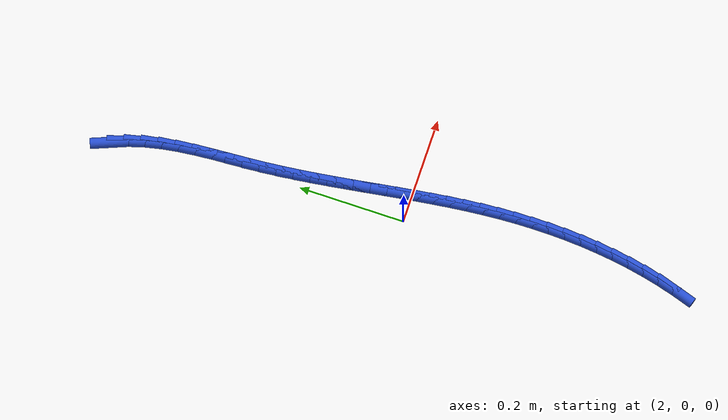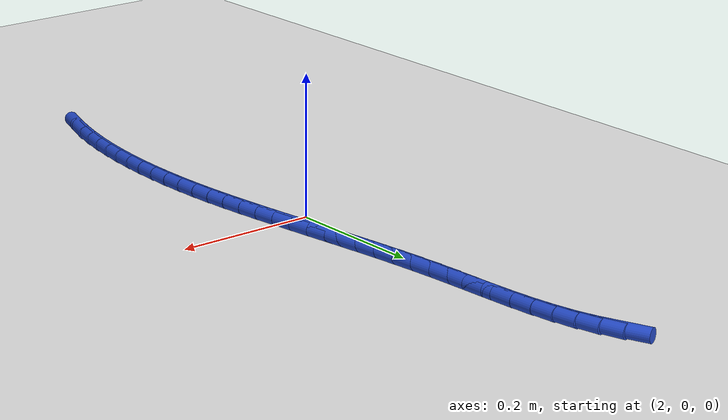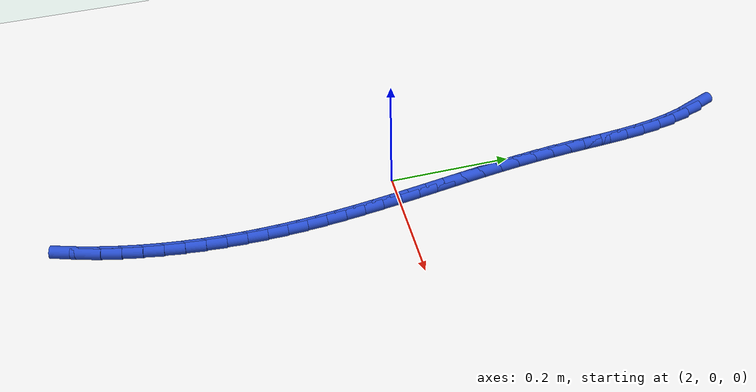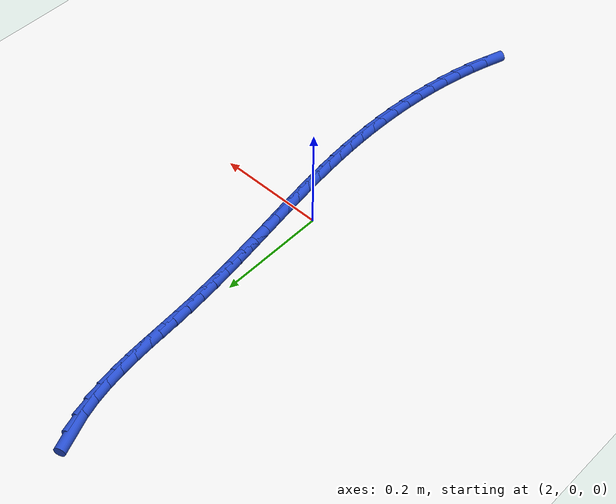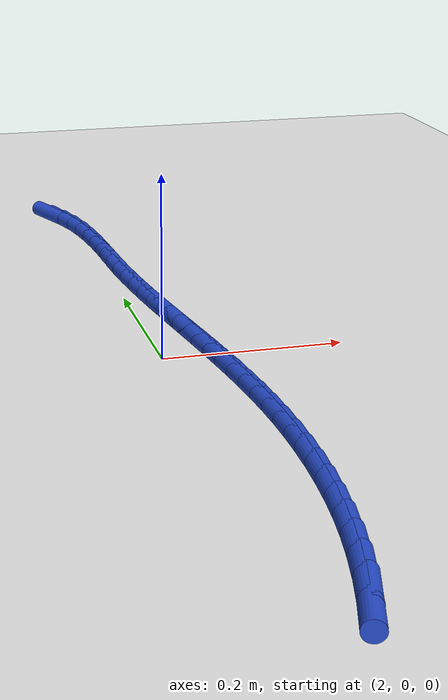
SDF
<sdf version="1.6">
 <world name="default">
  <model name="ground_plane">
   <static>1</static>
   <link name="link">
    <collision name="collision">
     <geometry><plane><normal>0 0 1</normal><size>100 100</size></plane></geometry>
     <surface><friction><ode><mu>100</mu><mu2>50</mu2></ode></friction></surface>
    </collision>
    <visual name="visual">
     <cast_shadows>0</cast_shadows>
     <geometry><plane><normal>0 0 1</normal><size>100 100</size></plane></geometry>
     <material>
      <script><uri>file://media/materials/scripts/gazebo.material</uri><name>Gazebo/WhiteGlow</name></script>
     </material>
    </visual>
   </link>
  </model>
  <model name="line">
   <link name="link_86">
    <pose>1.9703879646868343 0.5547297638940696 0.01 0 1.57 -1.1920962302328622</pose>
    <collision name="collision">
     <geometry><cylinder><radius>0.01</radius><length>0.08</length></cylinder></geometry>
    </collision>
    <visual name="visual">
     <material>
      <script><name>Gazebo/Blue</name><uri>file://media/materials/scripts/gazebo.material</uri></script>
     </material>
     <geometry><cylinder><radius>0.01</radius><length>0.08</length></cylinder></geometry>
    </visual>
   </link>
   <link name="link_87">
    <pose>1.981672517020618 0.5263699353138284 0.01 0 1.57 -1.283392205255295</pose>
    <collision name="collision">
     <geometry><cylinder><radius>0.01</radius><length>0.08</length></cylinder></geometry>
    </collision>
    <visual name="visual">
     <material>
      <script><name>Gazebo/Blue</name><uri>file://media/materials/scripts/gazebo.material</uri></script>
     </material>
     <geometry><cylinder><radius>0.01</radius><length>0.08</length></cylinder></geometry>
    </visual>
   </link>
   <link name="link_88">
    <pose>1.9903782246019466 0.4969177594995104 0.01 0 1.57 -1.3588948074237297</pose>
    <collision name="collision">
     <geometry><cylinder><radius>0.01</radius><length>0.08</length></cylinder></geometry>
    </collision>
    <visual name="visual">
     <material>
      <script><name>Gazebo/Blue</name><uri>file://media/materials/scripts/gazebo.material</uri></script>
     </material>
     <geometry><cylinder><radius>0.01</radius><length>0.08</length></cylinder></geometry>
    </visual>
   </link>
   <link name="link_89">
    <pose>1.9969128877062439 0.46654250759967525 0.01 0 1.57 -1.4183514249129734</pose>
    <collision name="collision">
     <geometry><cylinder><radius>0.01</radius><length>0.08</length></cylinder></geometry>
    </collision>
    <visual name="visual">
     <material>
      <script><name>Gazebo/Blue</name><uri>file://media/materials/scripts/gazebo.material</uri></script>
     </material>
     <geometry><cylinder><radius>0.01</radius><length>0.08</length></cylinder></geometry>
    </visual>
   </link>
   <link name="link_90">
    <pose>2.001694830958165 0.4354175409108945 0.01 0 1.57 -1.4624711047646606</pose>
    <collision name="collision">
     <geometry><cylinder><radius>0.01</radius><length>0.08</length></cylinder></geometry>
    </collision>
    <visual name="visual">
     <material>
      <script><name>Gazebo/Blue</name><uri>file://media/materials/scripts/gazebo.material</uri></script>
     </material>
     <geometry><cylinder><radius>0.01</radius><length>0.08</length></cylinder></geometry>
    </visual>
   </link>
   <link name="link_91">
    <pose>2.005142378982365 0.40371622072974067 0.01 0 1.57 -1.492107510066647</pose>
    <collision name="collision">
     <geometry><cylinder><radius>0.01</radius><length>0.08</length></cylinder></geometry>
    </collision>
    <visual name="visual">
     <material>
      <script><name>Gazebo/Blue</name><uri>file://media/materials/scripts/gazebo.material</uri></script>
     </material>
     <geometry><cylinder><radius>0.01</radius><length>0.08</length></cylinder></geometry>
    </visual>
   </link>
   <link name="link_92">
    <pose>2.0076738564034993 0.37161190835278524 0.01 0 1.57 -1.5079813501099824</pose>
    <collision name="collision">
     <geometry><cylinder><radius>0.01</radius><length>0.08</length></cylinder></geometry>
    </collision>
    <visual name="visual">
     <material>
      <script><name>Gazebo/Blue</name><uri>file://media/materials/scripts/gazebo.material</uri></script>
     </material>
     <geometry><cylinder><radius>0.01</radius><length>0.08</length></cylinder></geometry>
    </visual>
   </link>
   <link name="link_93">
    <pose>2.009707587846223 0.33927796507660124 0.01 0 1.57 -1.5105329467136241</pose>
    <collision name="collision">
     <geometry><cylinder><radius>0.01</radius><length>0.08</length></cylinder></geometry>
    </collision>
    <visual name="visual">
     <material>
      <script><name>Gazebo/Blue</name><uri>file://media/materials/scripts/gazebo.material</uri></script>
     </material>
     <geometry><cylinder><radius>0.01</radius><length>0.08</length></cylinder></geometry>
    </visual>
   </link>
   <link name="link_94">
    <pose>2.0116618979351917 0.3068877521977603 0.01 0 1.57 -1.4998835561727126</pose>
    <collision name="collision">
     <geometry><cylinder><radius>0.01</radius><length>0.08</length></cylinder></geometry>
    </collision>
    <visual name="visual">
     <material>
      <script><name>Gazebo/Blue</name><uri>file://media/materials/scripts/gazebo.material</uri></script>
     </material>
     <geometry><cylinder><radius>0.01</radius><length>0.08</length></cylinder></geometry>
    </visual>
   </link>
   <link name="link_95">
    <pose>2.0139543395174493 0.27461433139211805 0.01 0 1.57 -1.4805678119407046</pose>
    <collision name="collision">
     <geometry><cylinder><radius>0.01</radius><length>0.08</length></cylinder></geometry>
    </collision>
    <visual name="visual">
     <material>
      <script><name>Gazebo/Blue</name><uri>file://media/materials/scripts/gazebo.material</uri></script>
     </material>
     <geometry><cylinder><radius>0.01</radius><length>0.08</length></cylinder></geometry>
    </visual>
   </link>
   <link name="link_96">
    <pose>2.0168532666784658 0.2425728421580391 0.01 0 1.57 -1.462870612708206</pose>
    <collision name="collision">
     <geometry><cylinder><radius>0.01</radius><length>0.08</length></cylinder></geometry>
    </collision>
    <visual name="visual">
     <material>
      <script><name>Gazebo/Blue</name><uri>file://media/materials/scripts/gazebo.material</uri></script>
     </material>
     <geometry><cylinder><radius>0.01</radius><length>0.08</length></cylinder></geometry>
    </visual>
   </link>
   <link name="link_97">
    <pose>2.020300967879055 0.21075183828508826 0.01 0 1.57 -1.4482443104799332</pose>
    <collision name="collision">
     <geometry><cylinder><radius>0.01</radius><length>0.08</length></cylinder></geometry>
    </collision>
    <visual name="visual">
     <material>
      <script><name>Gazebo/Blue</name><uri>file://media/materials/scripts/gazebo.material</uri></script>
     </material>
     <geometry><cylinder><radius>0.01</radius><length>0.08</length></cylinder></geometry>
    </visual>
   </link>
   <link name="link_98">
    <pose>2.024196650227316 0.17912314845243338 0.01 0 1.57 -1.436758774221607</pose>
    <collision name="collision">
     <geometry><cylinder><radius>0.01</radius><length>0.08</length></cylinder></geometry>
    </collision>
    <visual name="visual">
     <material>
      <script><name>Gazebo/Blue</name><uri>file://media/materials/scripts/gazebo.material</uri></script>
     </material>
     <geometry><cylinder><radius>0.01</radius><length>0.08</length></cylinder></geometry>
    </visual>
   </link>
   <link name="link_99">
    <pose>2.0284395208313484 0.14765860133924333 0.01 0 1.57 -1.4284690190170515</pose>
    <collision name="collision">
     <geometry><cylinder><radius>0.01</radius><length>0.08</length></cylinder></geometry>
    </collision>
    <visual name="visual">
     <material>
      <script><name>Gazebo/Blue</name><uri>file://media/materials/scripts/gazebo.material</uri></script>
     </material>
     <geometry><cylinder><radius>0.01</radius><length>0.08</length></cylinder></geometry>
    </visual>
   </link>
   <link name="link_100">
    <pose>2.032928786799252 0.11633002562468596 0.01 0 1.57 -1.423418093058115</pose>
    <collision name="collision">
     <geometry><cylinder><radius>0.01</radius><length>0.08</length></cylinder></geometry>
    </collision>
    <visual name="visual">
     <material>
      <script><name>Gazebo/Blue</name><uri>file://media/materials/scripts/gazebo.material</uri></script>
     </material>
     <geometry><cylinder><radius>0.01</radius><length>0.08</length></cylinder></geometry>
    </visual>
   </link>
   <link name="link_101">
    <pose>2.0375636552391274 0.08510924998792911 0.01 0 1.57 -1.421639257323681</pose>
    <collision name="collision">
     <geometry><cylinder><radius>0.01</radius><length>0.08</length></cylinder></geometry>
    </collision>
    <visual name="visual">
     <material>
      <script><name>Gazebo/Blue</name><uri>file://media/materials/scripts/gazebo.material</uri></script>
     </material>
     <geometry><cylinder><radius>0.01</radius><length>0.08</length></cylinder></geometry>
    </visual>
   </link>
   <link name="link_102">
    <pose>2.042243333259074 0.05396810310814178 0.01 0 1.57 -1.423157311536039</pose>
    <collision name="collision">
     <geometry><cylinder><radius>0.01</radius><length>0.08</length></cylinder></geometry>
    </collision>
    <visual name="visual">
     <material>
      <script><name>Gazebo/Blue</name><uri>file://media/materials/scripts/gazebo.material</uri></script>
     </material>
     <geometry><cylinder><radius>0.01</radius><length>0.08</length></cylinder></geometry>
    </visual>
   </link>
   <link name="link_103">
    <pose>2.046867027967193 0.022878413664491656 0.01 0 1.57 -1.4279889646117643</pose>
    <collision name="collision">
     <geometry><cylinder><radius>0.01</radius><length>0.08</length></cylinder></geometry>
    </collision>
    <visual name="visual">
     <material>
      <script><name>Gazebo/Blue</name><uri>file://media/materials/scripts/gazebo.material</uri></script>
     </material>
     <geometry><cylinder><radius>0.01</radius><length>0.08</length></cylinder></geometry>
    </visual>
   </link>
   <link name="link_104">
    <pose>2.0513339464715825 -0.008187989663852969 0.01 0 1.57 -1.436142185924231</pose>
    <collision name="collision">
     <geometry><cylinder><radius>0.01</radius><length>0.08</length></cylinder></geometry>
    </collision>
    <visual name="visual">
     <material>
      <script><name>Gazebo/Blue</name><uri>file://media/materials/scripts/gazebo.material</uri></script>
     </material>
     <geometry><cylinder><radius>0.01</radius><length>0.08</length></cylinder></geometry>
    </visual>
   </link>
   <link name="link_105">
    <pose>2.0555432958803435 -0.03925927819772396 0.01 0 1.57 -1.4476145110159437</pose>
    <collision name="collision">
     <geometry><cylinder><radius>0.01</radius><length>0.08</length></cylinder></geometry>
    </collision>
    <visual name="visual">
     <material>
      <script><name>Gazebo/Blue</name><uri>file://media/materials/scripts/gazebo.material</uri></script>
     </material>
     <geometry><cylinder><radius>0.01</radius><length>0.08</length></cylinder></geometry>
    </visual>
   </link>
   <link name="link_106">
    <pose>2.0593942833015757 -0.0703636232579538 0.01 0 1.57 -1.4623903190723442</pose>
    <collision name="collision">
     <geometry><cylinder><radius>0.01</radius><length>0.08</length></cylinder></geometry>
    </collision>
    <visual name="visual">
     <material>
      <script><name>Gazebo/Blue</name><uri>file://media/materials/scripts/gazebo.material</uri></script>
     </material>
     <geometry><cylinder><radius>0.01</radius><length>0.08</length></cylinder></geometry>
    </visual>
   </link>
   <link name="link_107">
    <pose>2.0627861158433793 -0.10152919616537287 0.01 0 1.57 -1.4804371568404349</pose>
    <collision name="collision">
     <geometry><cylinder><radius>0.01</radius><length>0.08</length></cylinder></geometry>
    </collision>
    <visual name="visual">
     <material>
      <script><name>Gazebo/Blue</name><uri>file://media/materials/scripts/gazebo.material</uri></script>
     </material>
     <geometry><cylinder><radius>0.01</radius><length>0.08</length></cylinder></geometry>
    </visual>
   </link>
   <link name="link_108">
    <pose>2.065618000613854 -0.13278416824081368 0.01 0 1.57 -1.5017012392816635</pose>
    <collision name="collision">
     <geometry><cylinder><radius>0.01</radius><length>0.08</length></cylinder></geometry>
    </collision>
    <visual name="visual">
     <material>
      <script><name>Gazebo/Blue</name><uri>file://media/materials/scripts/gazebo.material</uri></script>
     </material>
     <geometry><cylinder><radius>0.01</radius><length>0.08</length></cylinder></geometry>
    </visual>
   </link>
   <link name="link_109">
    <pose>2.0677891453478208 -0.1641567100802867 0.01 0 1.57 -1.525741930684721</pose>
    <collision name="collision">
     <geometry><cylinder><radius>0.01</radius><length>0.08</length></cylinder></geometry>
    </collision>
    <visual name="visual">
     <material>
      <script><name>Gazebo/Blue</name><uri>file://media/materials/scripts/gazebo.material</uri></script>
     </material>
     <geometry><cylinder><radius>0.01</radius><length>0.08</length></cylinder></geometry>
    </visual>
   </link>
   <link name="link_110">
    <pose>2.0692095798585823 -0.19566247623287372 0.01 0 1.57 -1.551244169159789</pose>
    <collision name="collision">
     <geometry><cylinder><radius>0.01</radius><length>0.08</length></cylinder></geometry>
    </collision>
    <visual name="visual">
     <material>
      <script><name>Gazebo/Blue</name><uri>file://media/materials/scripts/gazebo.material</uri></script>
     </material>
     <geometry><cylinder><radius>0.01</radius><length>0.08</length></cylinder></geometry>
    </visual>
   </link>
   <link name="link_111">
    <pose>2.0698277075100284 -0.2272727411259648 0.01 0 1.57 1.5636215239308564</pose>
    <collision name="collision">
     <geometry><cylinder><radius>0.01</radius><length>0.08</length></cylinder></geometry>
    </collision>
    <visual name="visual">
     <material>
      <script><name>Gazebo/Blue</name><uri>file://media/materials/scripts/gazebo.material</uri></script>
     </material>
     <geometry><cylinder><radius>0.01</radius><length>0.08</length></cylinder></geometry>
    </visual>
   </link>
   <link name="link_112">
    <pose>2.069600433077102 -0.25894894705905586 0.01 0 1.57 1.5356169845787841</pose>
    <collision name="collision">
     <geometry><cylinder><radius>0.01</radius><length>0.08</length></cylinder></geometry>
    </collision>
    <visual name="visual">
     <material>
      <script><name>Gazebo/Blue</name><uri>file://media/materials/scripts/gazebo.material</uri></script>
     </material>
     <geometry><cylinder><radius>0.01</radius><length>0.08</length></cylinder></geometry>
    </visual>
   </link>
   <link name="link_113">
    <pose>2.0684846613347485 -0.29065253633164084 0.01 0 1.57 1.5062848875545392</pose>
    <collision name="collision">
     <geometry><cylinder><radius>0.01</radius><length>0.08</length></cylinder></geometry>
    </collision>
    <visual name="visual">
     <material>
      <script><name>Gazebo/Blue</name><uri>file://media/materials/scripts/gazebo.material</uri></script>
     </material>
     <geometry><cylinder><radius>0.01</radius><length>0.08</length></cylinder></geometry>
    </visual>
   </link>
   <link name="link_114">
    <pose>2.066437297057909 -0.32234495124321555 0.01 0 1.57 1.4755795699823377</pose>
    <collision name="collision">
     <geometry><cylinder><radius>0.01</radius><length>0.08</length></cylinder></geometry>
    </collision>
    <visual name="visual">
     <material>
      <script><name>Gazebo/Blue</name><uri>file://media/materials/scripts/gazebo.material</uri></script>
     </material>
     <geometry><cylinder><radius>0.01</radius><length>0.08</length></cylinder></geometry>
    </visual>
   </link>
   <link name="link_115">
    <pose>2.0634152450215297 -0.35398763409327527 0.01 0 1.57 1.4434613736640258</pose>
    <collision name="collision">
     <geometry><cylinder><radius>0.01</radius><length>0.08</length></cylinder></geometry>
    </collision>
    <visual name="visual">
     <material>
      <script><name>Gazebo/Blue</name><uri>file://media/materials/scripts/gazebo.material</uri></script>
     </material>
     <geometry><cylinder><radius>0.01</radius><length>0.08</length></cylinder></geometry>
    </visual>
   </link>
   <link name="link_116">
    <pose>2.0593754100005532 -0.3855420271813154 0.01 0 1.57 1.4098985831432178</pose>
    <collision name="collision">
     <geometry><cylinder><radius>0.01</radius><length>0.08</length></cylinder></geometry>
    </collision>
    <visual name="visual">
     <material>
      <script><name>Gazebo/Blue</name><uri>file://media/materials/scripts/gazebo.material</uri></script>
     </material>
     <geometry><cylinder><radius>0.01</radius><length>0.08</length></cylinder></geometry>
    </visual>
   </link>
   <link name="link_117">
    <pose>2.0542746967699235 -0.41696957280683095 0.01 0 1.57 1.374869593778129</pose>
    <collision name="collision">
     <geometry><cylinder><radius>0.01</radius><length>0.08</length></cylinder></geometry>
    </collision>
    <visual name="visual">
     <material>
      <script><name>Gazebo/Blue</name><uri>file://media/materials/scripts/gazebo.material</uri></script>
     </material>
     <geometry><cylinder><radius>0.01</radius><length>0.08</length></cylinder></geometry>
    </visual>
   </link>
   <link name="link_118">
    <pose>2.0480700101045843 -0.44823171326931743 0.01 0 1.57 1.3383652667198247</pose>
    <collision name="collision">
     <geometry><cylinder><radius>0.01</radius><length>0.08</length></cylinder></geometry>
    </collision>
    <visual name="visual">
     <material>
      <script><name>Gazebo/Blue</name><uri>file://media/materials/scripts/gazebo.material</uri></script>
     </material>
     <geometry><cylinder><radius>0.01</radius><length>0.08</length></cylinder></geometry>
    </visual>
   </link>
   <link name="link_119">
    <pose>2.0407182547794784 -0.47928989086827056 0.01 0 1.57 1.3003913981377953</pose>
    <collision name="collision">
     <geometry><cylinder><radius>0.01</radius><length>0.08</length></cylinder></geometry>
    </collision>
    <visual name="visual">
     <material>
      <script><name>Gazebo/Blue</name><uri>file://media/materials/scripts/gazebo.material</uri></script>
     </material>
     <geometry><cylinder><radius>0.01</radius><length>0.08</length></cylinder></geometry>
    </visual>
   </link>
   <link name="link_120">
    <pose>2.032176335569551 -0.5101055479031843 0.01 0 1.57 1.2609711959421814</pose>
    <collision name="collision">
     <geometry><cylinder><radius>0.01</radius><length>0.08</length></cylinder></geometry>
    </collision>
    <visual name="visual">
     <material>
      <script><name>Gazebo/Blue</name><uri>file://media/materials/scripts/gazebo.material</uri></script>
     </material>
     <geometry><cylinder><radius>0.01</radius><length>0.08</length></cylinder></geometry>
    </visual>
   </link>
  </model>
 </world>
</sdf>
